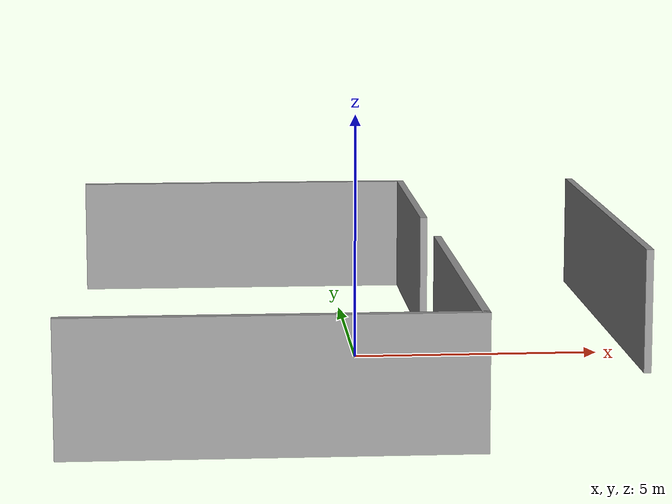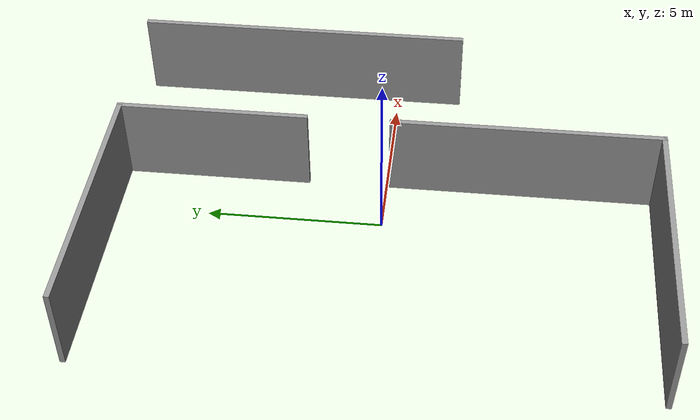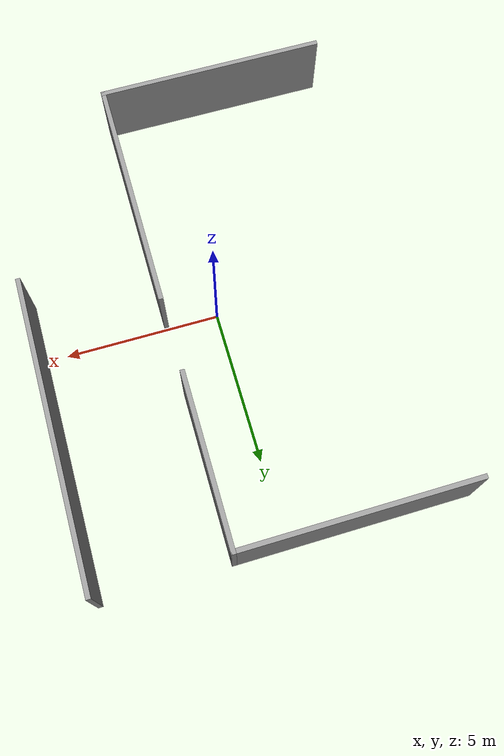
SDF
<?xml version='1.0'?>
<sdf version='1.6'>
  <model name='mini_project_masters'>
    <pose frame=''>0.0 0.0 0 0 -0 0</pose>
    <link name='Wall_1'>
      <collision name='Wall_1_Collision'>
        <geometry>
          <box>
            <size>7.5 0.15 2.5</size>
          </box>
        </geometry>
        <pose frame=''>0 0 1.25 0 -0 0</pose>
      </collision>
      <visual name='Wall_1_Visual'>
        <pose frame=''>0 0 1.25 0 -0 0</pose>
        <geometry>
          <box>
            <size>7.5 0.15 2.5</size>
          </box>
        </geometry>
        <material>
          <script>
            <uri>file://media/materials/scripts/gazebo.material</uri>
            <name>Gazebo/Grey</name>
          </script>
          <ambient>1 1 1 1</ambient>
        </material>
      </visual>
      <pose frame=''>-1.99511 -7.73996 0 0 -0 0</pose>
    </link>
    <link name='Wall_13'>
      <collision name='Wall_13_Collision'>
        <geometry>
          <box>
            <size>9.75 0.15 2.5</size>
          </box>
        </geometry>
        <pose frame=''>0 0 1.25 0 -0 0</pose>
      </collision>
      <visual name='Wall_13_Visual'>
        <pose frame=''>0 0 1.25 0 -0 0</pose>
        <geometry>
          <box>
            <size>9.75 0.15 2.5</size>
          </box>
        </geometry>
        <material>
          <script>
            <uri>file://media/materials/scripts/gazebo.material</uri>
            <name>Gazebo/Grey</name>
          </script>
          <ambient>1 1 1 1</ambient>
        </material>
      </visual>
      <pose frame=''>5.70384 2.93996 0 0 -0 1.5708</pose>
    </link>
    <link name='Wall_2'>
      <collision name='Wall_2_Collision'>
        <geometry>
          <box>
            <size>7.75 0.15 2.5</size>
          </box>
        </geometry>
        <pose frame=''>0 0 1.25 0 -0 0</pose>
      </collision>
      <visual name='Wall_2_Visual'>
        <pose frame=''>0 0 1.25 0 -0 0</pose>
        <geometry>
          <box>
            <size>7.75 0.15 2.5</size>
          </box>
        </geometry>
        <material>
          <script>
            <uri>file://media/materials/scripts/gazebo.material</uri>
            <name>Gazebo/Grey</name>
          </script>
          <ambient>1 1 1 1</ambient>
        </material>
      </visual>
      <pose frame=''>1.67989 -3.93995 0 0 -0 1.5708</pose>
    </link>
    <link name='Wall_6'>
      <collision name='Wall_6_Collision'>
        <geometry>
          <box>
            <size>5.5 0.15 2.5</size>
          </box>
        </geometry>
        <pose frame=''>0 0 1.25 0 -0 0</pose>
      </collision>
      <visual name='Wall_6_Visual'>
        <pose frame=''>0 0 1.25 0 -0 0</pose>
        <geometry>
          <box>
            <size>5.5 0.15 2.5</size>
          </box>
        </geometry>
        <material>
          <script>
            <uri>file://media/materials/scripts/gazebo.material</uri>
            <name>Gazebo/Grey</name>
          </script>
          <ambient>1 1 1 1</ambient>
        </material>
      </visual>
      <pose frame=''>1.64616 5.02561 0 0 -0 1.5708</pose>
    </link>
    <link name='Wall_7'>
      <collision name='Wall_7_Collision'>
        <geometry>
          <box>
            <size>7.5 0.15 2.5</size>
          </box>
        </geometry>
        <pose frame=''>0 0 1.25 0 -0 0</pose>
      </collision>
      <visual name='Wall_7_Visual'>
        <pose frame=''>0 0 1.25 0 -0 0</pose>
        <geometry>
          <box>
            <size>7.5 0.15 2.5</size>
          </box>
        </geometry>
        <material>
          <script>
            <uri>file://media/materials/scripts/gazebo.material</uri>
            <name>Gazebo/Grey</name>
          </script>
          <ambient>1 1 1 1</ambient>
        </material>
      </visual>
      <pose frame=''>-2.02884 7.70061 0 0 -0 3.14159</pose>
    </link>
    <static>1</static>
  </model>
</sdf>
